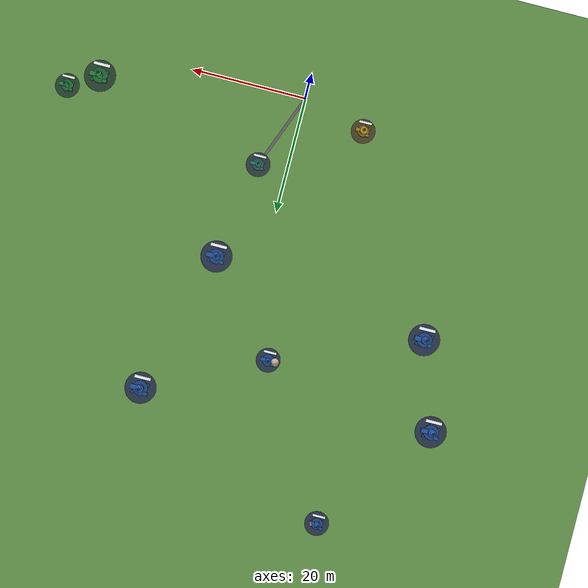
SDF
<sdf version="1.6">
 <world name="ethiopia_cities">
  <model name="ground_plane">
   <static>true</static>
   <link name="link">
    <collision name="collision">
     <geometry><plane><normal>0 0 1</normal><size>200 200</size></plane></geometry>
     <surface><friction><ode><mu>100</mu><mu2>50</mu2></ode></friction></surface>
    </collision>
    <visual name="visual">
     <geometry><plane><normal>0 0 1</normal><size>200 200</size></plane></geometry>
     <material><ambient>0.4 0.6 0.3 1</ambient><diffuse>0.4 0.6 0.3 1</diffuse></material>
    </visual>
   </link>
  </model>
  <model name="ambo">
   <static>true</static>
   <pose>-11 3 0.4 0 0 0</pose>
   <link name="link">
    <visual name="plaza_disc">
     <pose>0 0 0.02 0 0 0</pose>
     <geometry><cylinder><radius>2.1</radius><length>0.04</length></cylinder></geometry>
     <material>
      <ambient>0.22 0.19 0.12 1</ambient>
      <diffuse>0.29 0.26 0.16 1</diffuse>
      <specular>0.1 0.1 0.1 1</specular>
     </material>
    </visual>
    <visual name="marker_base">
     <geometry><cylinder><radius>1</radius><length>0.8</length></cylinder></geometry>
     <material>
      <ambient>0.34 0.28 0.08 1</ambient>
      <diffuse>0.51 0.42 0.12 1</diffuse>
      <specular>0.2 0.2 0.2 1</specular>
     </material>
    </visual>
    <visual name="marker_tower">
     <pose>0 0 0.92 0 0 0</pose>
     <geometry><cylinder><radius>0.65</radius><length>1.04</length></cylinder></geometry>
     <material>
      <ambient>0.51 0.42 0.12 1</ambient>
      <diffuse>0.72 0.59 0.17 1</diffuse>
      <specular>0.28 0.28 0.28 1</specular>
     </material>
    </visual>
    <visual name="marker_spire">
     <pose>0 0 1.72 0 0 0</pose>
     <geometry><sphere><radius>0.28</radius></sphere></geometry>
     <material>
      <ambient>0.64 0.52 0.15 1</ambient>
      <diffuse>0.85 0.7 0.2 1</diffuse>
      <specular>0.35 0.35 0.35 1</specular>
     </material>
    </visual>
    <visual name="extra_building_a">
     <pose>0.9 0 0.36 0 0 0</pose>
     <geometry><box><size>0.9 0.6 0.72</size></box></geometry>
     <material>
      <ambient>0.38 0.32 0.09 1</ambient>
      <diffuse>0.64 0.52 0.15 1</diffuse>
      <specular>0.2 0.2 0.2 1</specular>
     </material>
    </visual>
    <visual name="extra_building_b">
     <pose>-0.8 0.6 0.28 0 0 0</pose>
     <geometry><box><size>0.6 0.45 0.56</size></box></geometry>
     <material>
      <ambient>0.38 0.32 0.09 1</ambient>
      <diffuse>0.59 0.49 0.14 1</diffuse>
      <specular>0.2 0.2 0.2 1</specular>
     </material>
    </visual>
    <visual name="sub_marker_1">
     <pose>0.2 -1 0.18 0 0 0</pose>
     <geometry><box><size>0.35 0.35 0.36</size></box></geometry>
     <material>
      <ambient>0.34 0.28 0.08 1</ambient>
      <diffuse>0.55 0.45 0.13 1</diffuse>
      <specular>0.15 0.15 0.15 1</specular>
     </material>
    </visual>
    <visual name="sub_marker_2">
     <pose>-0.9 -0.6 0.18 0 0 0</pose>
     <geometry><box><size>0.35 0.35 0.36</size></box></geometry>
     <material>
      <ambient>0.34 0.28 0.08 1</ambient>
      <diffuse>0.55 0.45 0.13 1</diffuse>
      <specular>0.15 0.15 0.15 1</specular>
     </material>
    </visual>
    <visual name="label_sign">
     <pose>0 -1.4 0.75 0 0 0</pose>
     <geometry><box><size>2.2 0.4 0.08</size></box></geometry>
     <material>
      <ambient>1 1 1 1</ambient>
      <diffuse>1 1 1 1</diffuse>
      <specular>0.1 0.1 0.1 1</specular>
      <pbr>
       <metal>
        <albedo_map>assets/labels/ambo.ppm</albedo_map>
        <roughness>0.9</roughness>
        <metalness>0</metalness>
       </metal>
      </pbr>
     </material>
    </visual>
    <visual name="glow_beacon">
     <pose>0 0 2.06 0 0 0</pose>
     <geometry><sphere><radius>0.18</radius></sphere></geometry>
     <material>
      <ambient>0.26 0.21 0.06 1</ambient>
      <diffuse>0.34 0.28 0.08 1</diffuse>
      <specular>0.1 0.1 0.1 1</specular>
      <emissive>1 0.85 0.35 1</emissive>
     </material>
    </visual>
    <collision name="collision">
     <geometry><cylinder><radius>1</radius><length>0.8</length></cylinder></geometry>
    </collision>
   </link>
  </model>
  <model name="dire_dawa">
   <static>true</static>
   <pose>35 5 0.4 0 0 0</pose>
   <link name="link">
    <visual name="plaza_disc">
     <pose>0 0 0.02 0 0 0</pose>
     <geometry><cylinder><radius>2.73</radius><length>0.04</length></cylinder></geometry>
     <material>
      <ambient>0.12 0.19 0.14 1</ambient>
      <diffuse>0.16 0.26 0.19 1</diffuse>
      <specular>0.1 0.1 0.1 1</specular>
     </material>
    </visual>
    <visual name="marker_base">
     <geometry><cylinder><radius>1.3</radius><length>0.95</length></cylinder></geometry>
     <material>
      <ambient>0.08 0.28 0.14 1</ambient>
      <diffuse>0.12 0.42 0.21 1</diffuse>
      <specular>0.2 0.2 0.2 1</specular>
     </material>
    </visual>
    <visual name="marker_tower">
     <pose>0 0 1.42 0 0 0</pose>
     <geometry><cylinder><radius>0.52</radius><length>1.9</length></cylinder></geometry>
     <material>
      <ambient>0.12 0.42 0.21 1</ambient>
      <diffuse>0.17 0.59 0.3 1</diffuse>
      <specular>0.28 0.28 0.28 1</specular>
     </material>
    </visual>
    <visual name="marker_spire">
     <pose>0 0 2.69 0 0 0</pose>
     <geometry><sphere><radius>0.31</radius></sphere></geometry>
     <material>
      <ambient>0.15 0.52 0.26 1</ambient>
      <diffuse>0.2 0.7 0.35 1</diffuse>
      <specular>0.35 0.35 0.35 1</specular>
     </material>
    </visual>
    <visual name="extra_building_a">
     <pose>1.17 0 0.43 0 0 0</pose>
     <geometry><box><size>1.17 0.78 0.85</size></box></geometry>
     <material>
      <ambient>0.09 0.32 0.16 1</ambient>
      <diffuse>0.15 0.52 0.26 1</diffuse>
      <specular>0.2 0.2 0.2 1</specular>
     </material>
    </visual>
    <visual name="extra_building_b">
     <pose>-1.04 0.78 0.33 0 0 0</pose>
     <geometry><box><size>0.78 0.59 0.66</size></box></geometry>
     <material>
      <ambient>0.09 0.32 0.16 1</ambient>
      <diffuse>0.14 0.49 0.24 1</diffuse>
      <specular>0.2 0.2 0.2 1</specular>
     </material>
    </visual>
    <visual name="sub_marker_1">
     <pose>0.26 -1.3 0.21 0 0 0</pose>
     <geometry><box><size>0.45 0.45 0.43</size></box></geometry>
     <material>
      <ambient>0.08 0.28 0.14 1</ambient>
      <diffuse>0.13 0.45 0.23 1</diffuse>
      <specular>0.15 0.15 0.15 1</specular>
     </material>
    </visual>
    <visual name="sub_marker_2">
     <pose>-1.17 -0.78 0.21 0 0 0</pose>
     <geometry><box><size>0.45 0.45 0.43</size></box></geometry>
     <material>
      <ambient>0.08 0.28 0.14 1</ambient>
      <diffuse>0.13 0.45 0.23 1</diffuse>
      <specular>0.15 0.15 0.15 1</specular>
     </material>
    </visual>
    <visual name="sub_marker_3">
     <pose>1.17 0.91 0.21 0 0 0</pose>
     <geometry><box><size>0.45 0.45 0.43</size></box></geometry>
     <material>
      <ambient>0.08 0.28 0.14 1</ambient>
      <diffuse>0.13 0.45 0.23 1</diffuse>
      <specular>0.15 0.15 0.15 1</specular>
     </material>
    </visual>
    <visual name="label_sign">
     <pose>0 -1.82 0.82 0 0 0</pose>
     <geometry><box><size>2.86 0.52 0.08</size></box></geometry>
     <material>
      <ambient>1 1 1 1</ambient>
      <diffuse>1 1 1 1</diffuse>
      <specular>0.1 0.1 0.1 1</specular>
      <pbr>
       <metal>
        <albedo_map>assets/labels/dire_dawa.ppm</albedo_map>
        <roughness>0.9</roughness>
        <metalness>0</metalness>
       </metal>
      </pbr>
     </material>
    </visual>
    <visual name="glow_beacon">
     <pose>0 0 3.06 0 0 0</pose>
     <geometry><sphere><radius>0.23</radius></sphere></geometry>
     <material>
      <ambient>0.06 0.21 0.1 1</ambient>
      <diffuse>0.08 0.28 0.14 1</diffuse>
      <specular>0.1 0.1 0.1 1</specular>
      <emissive>0.35 0.85 0.5 1</emissive>
     </material>
    </visual>
    <collision name="collision">
     <geometry><cylinder><radius>1.3</radius><length>0.95</length></cylinder></geometry>
    </collision>
   </link>
  </model>
  <model name="harar">
   <static>true</static>
   <pose>40 8 0.4 0 0 0</pose>
   <link name="link">
    <visual name="plaza_disc">
     <pose>0 0 0.02 0 0 0</pose>
     <geometry><cylinder><radius>2.1</radius><length>0.04</length></cylinder></geometry>
     <material>
      <ambient>0.12 0.19 0.14 1</ambient>
      <diffuse>0.16 0.26 0.19 1</diffuse>
      <specular>0.1 0.1 0.1 1</specular>
     </material>
    </visual>
    <visual name="marker_base">
     <geometry><cylinder><radius>1</radius><length>0.8</length></cylinder></geometry>
     <material>
      <ambient>0.08 0.28 0.14 1</ambient>
      <diffuse>0.12 0.42 0.21 1</diffuse>
      <specular>0.2 0.2 0.2 1</specular>
     </material>
    </visual>
    <visual name="marker_tower">
     <pose>0 0 1.2 0 0 0</pose>
     <geometry><cylinder><radius>0.4</radius><length>1.6</length></cylinder></geometry>
     <material>
      <ambient>0.12 0.42 0.21 1</ambient>
      <diffuse>0.17 0.59 0.3 1</diffuse>
      <specular>0.28 0.28 0.28 1</specular>
     </material>
    </visual>
    <visual name="marker_spire">
     <pose>0 0 2.24 0 0 0</pose>
     <geometry><sphere><radius>0.24</radius></sphere></geometry>
     <material>
      <ambient>0.15 0.52 0.26 1</ambient>
      <diffuse>0.2 0.7 0.35 1</diffuse>
      <specular>0.35 0.35 0.35 1</specular>
     </material>
    </visual>
    <visual name="extra_building_a">
     <pose>0.9 0 0.36 0 0 0</pose>
     <geometry><box><size>0.9 0.6 0.72</size></box></geometry>
     <material>
      <ambient>0.09 0.32 0.16 1</ambient>
      <diffuse>0.15 0.52 0.26 1</diffuse>
      <specular>0.2 0.2 0.2 1</specular>
     </material>
    </visual>
    <visual name="extra_building_b">
     <pose>-0.8 0.6 0.28 0 0 0</pose>
     <geometry><box><size>0.6 0.45 0.56</size></box></geometry>
     <material>
      <ambient>0.09 0.32 0.16 1</ambient>
      <diffuse>0.14 0.49 0.24 1</diffuse>
      <specular>0.2 0.2 0.2 1</specular>
     </material>
    </visual>
    <visual name="sub_marker_1">
     <pose>0.2 -1 0.18 0 0 0</pose>
     <geometry><box><size>0.35 0.35 0.36</size></box></geometry>
     <material>
      <ambient>0.08 0.28 0.14 1</ambient>
      <diffuse>0.13 0.45 0.23 1</diffuse>
      <specular>0.15 0.15 0.15 1</specular>
     </material>
    </visual>
    <visual name="sub_marker_2">
     <pose>-0.9 -0.6 0.18 0 0 0</pose>
     <geometry><box><size>0.35 0.35 0.36</size></box></geometry>
     <material>
      <ambient>0.08 0.28 0.14 1</ambient>
      <diffuse>0.13 0.45 0.23 1</diffuse>
      <specular>0.15 0.15 0.15 1</specular>
     </material>
    </visual>
    <visual name="label_sign">
     <pose>0 -1.4 0.75 0 0 0</pose>
     <geometry><box><size>2.2 0.4 0.08</size></box></geometry>
     <material>
      <ambient>1 1 1 1</ambient>
      <diffuse>1 1 1 1</diffuse>
      <specular>0.1 0.1 0.1 1</specular>
      <pbr>
       <metal>
        <albedo_map>assets/labels/harar.ppm</albedo_map>
        <roughness>0.9</roughness>
        <metalness>0</metalness>
       </metal>
      </pbr>
     </material>
    </visual>
    <visual name="glow_beacon">
     <pose>0 0 2.53 0 0 0</pose>
     <geometry><sphere><radius>0.18</radius></sphere></geometry>
     <material>
      <ambient>0.06 0.21 0.1 1</ambient>
      <diffuse>0.08 0.28 0.14 1</diffuse>
      <specular>0.1 0.1 0.1 1</specular>
      <emissive>0.35 0.85 0.5 1</emissive>
     </material>
    </visual>
    <collision name="collision">
     <geometry><cylinder><radius>1</radius><length>0.8</length></cylinder></geometry>
    </collision>
   </link>
  </model>
  <model name="debre_berhan">
   <static>true</static>
   <pose>5 13 0.4 0 0 0</pose>
   <link name="link">
    <visual name="plaza_disc">
     <pose>0 0 0.02 0 0 0</pose>
     <geometry><cylinder><radius>2.1</radius><length>0.04</length></cylinder></geometry>
     <material>
      <ambient>0.13 0.18 0.18 1</ambient>
      <diffuse>0.17 0.24 0.24 1</diffuse>
      <specular>0.1 0.1 0.1 1</specular>
     </material>
    </visual>
    <visual name="marker_base">
     <geometry><cylinder><radius>1</radius><length>0.8</length></cylinder></geometry>
     <material>
      <ambient>0.1 0.24 0.24 1</ambient>
      <diffuse>0.15 0.36 0.36 1</diffuse>
      <specular>0.2 0.2 0.2 1</specular>
     </material>
    </visual>
    <visual name="marker_tower">
     <pose>0 0 0.96 0 0 0</pose>
     <geometry><cylinder><radius>0.5</radius><length>1.12</length></cylinder></geometry>
     <material>
      <ambient>0.15 0.36 0.36 1</ambient>
      <diffuse>0.21 0.51 0.51 1</diffuse>
      <specular>0.28 0.28 0.28 1</specular>
     </material>
    </visual>
    <visual name="marker_spire">
     <pose>0 0 1.8 0 0 0</pose>
     <geometry><sphere><radius>0.28</radius></sphere></geometry>
     <material>
      <ambient>0.19 0.45 0.45 1</ambient>
      <diffuse>0.25 0.6 0.6 1</diffuse>
      <specular>0.35 0.35 0.35 1</specular>
     </material>
    </visual>
    <visual name="extra_building_a">
     <pose>0.9 0 0.36 0 0 0</pose>
     <geometry><box><size>0.9 0.6 0.72</size></box></geometry>
     <material>
      <ambient>0.11 0.27 0.27 1</ambient>
      <diffuse>0.19 0.45 0.45 1</diffuse>
      <specular>0.2 0.2 0.2 1</specular>
     </material>
    </visual>
    <visual name="extra_building_b">
     <pose>-0.8 0.6 0.28 0 0 0</pose>
     <geometry><box><size>0.6 0.45 0.56</size></box></geometry>
     <material>
      <ambient>0.11 0.27 0.27 1</ambient>
      <diffuse>0.17 0.42 0.42 1</diffuse>
      <specular>0.2 0.2 0.2 1</specular>
     </material>
    </visual>
    <visual name="sub_marker_1">
     <pose>0.2 -1 0.18 0 0 0</pose>
     <geometry><box><size>0.35 0.35 0.36</size></box></geometry>
     <material>
      <ambient>0.1 0.24 0.24 1</ambient>
      <diffuse>0.16 0.39 0.39 1</diffuse>
      <specular>0.15 0.15 0.15 1</specular>
     </material>
    </visual>
    <visual name="sub_marker_2">
     <pose>-0.9 -0.6 0.18 0 0 0</pose>
     <geometry><box><size>0.35 0.35 0.36</size></box></geometry>
     <material>
      <ambient>0.1 0.24 0.24 1</ambient>
      <diffuse>0.16 0.39 0.39 1</diffuse>
      <specular>0.15 0.15 0.15 1</specular>
     </material>
    </visual>
    <visual name="label_sign">
     <pose>0 -1.4 0.75 0 0 0</pose>
     <geometry><box><size>2.2 0.4 0.08</size></box></geometry>
     <material>
      <ambient>1 1 1 1</ambient>
      <diffuse>1 1 1 1</diffuse>
      <specular>0.1 0.1 0.1 1</specular>
      <pbr>
       <metal>
        <albedo_map>assets/labels/debre_berhan.ppm</albedo_map>
        <roughness>0.9</roughness>
        <metalness>0</metalness>
       </metal>
      </pbr>
     </material>
    </visual>
    <visual name="glow_beacon">
     <pose>0 0 2.14 0 0 0</pose>
     <geometry><sphere><radius>0.18</radius></sphere></geometry>
     <material>
      <ambient>0.07 0.18 0.18 1</ambient>
      <diffuse>0.1 0.24 0.24 1</diffuse>
      <specular>0.1 0.1 0.1 1</specular>
      <emissive>0.4 0.75 0.75 1</emissive>
     </material>
    </visual>
    <collision name="collision">
     <geometry><cylinder><radius>1</radius><length>0.8</length></cylinder></geometry>
    </collision>
   </link>
  </model>
  <model name="dessie">
   <static>true</static>
   <pose>8 30 0.4 0 0 0</pose>
   <link name="link">
    <visual name="plaza_disc">
     <pose>0 0 0.02 0 0 0</pose>
     <geometry><cylinder><radius>2.73</radius><length>0.04</length></cylinder></geometry>
     <material>
      <ambient>0.12 0.16 0.22 1</ambient>
      <diffuse>0.16 0.21 0.29 1</diffuse>
      <specular>0.1 0.1 0.1 1</specular>
     </material>
    </visual>
    <visual name="marker_base">
     <geometry><cylinder><radius>1.3</radius><length>0.95</length></cylinder></geometry>
     <material>
      <ambient>0.08 0.18 0.34 1</ambient>
      <diffuse>0.12 0.27 0.51 1</diffuse>
      <specular>0.2 0.2 0.2 1</specular>
     </material>
    </visual>
    <visual name="marker_tower">
     <pose>0 0 1.19 0 0 0</pose>
     <geometry><cylinder><radius>0.65</radius><length>1.42</length></cylinder></geometry>
     <material>
      <ambient>0.12 0.27 0.51 1</ambient>
      <diffuse>0.17 0.38 0.72 1</diffuse>
      <specular>0.28 0.28 0.28 1</specular>
     </material>
    </visual>
    <visual name="marker_spire">
     <pose>0 0 2.32 0 0 0</pose>
     <geometry><sphere><radius>0.42</radius></sphere></geometry>
     <material>
      <ambient>0.15 0.34 0.64 1</ambient>
      <diffuse>0.2 0.45 0.85 1</diffuse>
      <specular>0.35 0.35 0.35 1</specular>
     </material>
    </visual>
    <visual name="extra_building_a">
     <pose>1.17 0 0.43 0 0 0</pose>
     <geometry><box><size>1.17 0.78 0.85</size></box></geometry>
     <material>
      <ambient>0.09 0.2 0.38 1</ambient>
      <diffuse>0.15 0.34 0.64 1</diffuse>
      <specular>0.2 0.2 0.2 1</specular>
     </material>
    </visual>
    <visual name="extra_building_b">
     <pose>-1.04 0.78 0.33 0 0 0</pose>
     <geometry><box><size>0.78 0.59 0.66</size></box></geometry>
     <material>
      <ambient>0.09 0.2 0.38 1</ambient>
      <diffuse>0.14 0.32 0.59 1</diffuse>
      <specular>0.2 0.2 0.2 1</specular>
     </material>
    </visual>
    <visual name="sub_marker_1">
     <pose>0.26 -1.3 0.21 0 0 0</pose>
     <geometry><box><size>0.45 0.45 0.43</size></box></geometry>
     <material>
      <ambient>0.08 0.18 0.34 1</ambient>
      <diffuse>0.13 0.29 0.55 1</diffuse>
      <specular>0.15 0.15 0.15 1</specular>
     </material>
    </visual>
    <visual name="sub_marker_2">
     <pose>-1.17 -0.78 0.21 0 0 0</pose>
     <geometry><box><size>0.45 0.45 0.43</size></box></geometry>
     <material>
      <ambient>0.08 0.18 0.34 1</ambient>
      <diffuse>0.13 0.29 0.55 1</diffuse>
      <specular>0.15 0.15 0.15 1</specular>
     </material>
    </visual>
    <visual name="sub_marker_3">
     <pose>1.17 0.91 0.21 0 0 0</pose>
     <geometry><box><size>0.45 0.45 0.43</size></box></geometry>
     <material>
      <ambient>0.08 0.18 0.34 1</ambient>
      <diffuse>0.13 0.29 0.55 1</diffuse>
      <specular>0.15 0.15 0.15 1</specular>
     </material>
    </visual>
    <visual name="label_sign">
     <pose>0 -1.82 0.82 0 0 0</pose>
     <geometry><box><size>2.86 0.52 0.08</size></box></geometry>
     <material>
      <ambient>1 1 1 1</ambient>
      <diffuse>1 1 1 1</diffuse>
      <specular>0.1 0.1 0.1 1</specular>
      <pbr>
       <metal>
        <albedo_map>assets/labels/dessie.ppm</albedo_map>
        <roughness>0.9</roughness>
        <metalness>0</metalness>
       </metal>
      </pbr>
     </material>
    </visual>
    <visual name="glow_beacon">
     <pose>0 0 2.82 0 0 0</pose>
     <geometry><sphere><radius>0.23</radius></sphere></geometry>
     <material>
      <ambient>0.06 0.14 0.26 1</ambient>
      <diffuse>0.08 0.18 0.34 1</diffuse>
      <specular>0.1 0.1 0.1 1</specular>
      <emissive>0.35 0.6 1 1</emissive>
     </material>
    </visual>
    <collision name="collision">
     <geometry><cylinder><radius>1.3</radius><length>0.95</length></cylinder></geometry>
    </collision>
   </link>
  </model>
  <model name="lalibela">
   <static>true</static>
   <pose>-5 45 0.4 0 0 0</pose>
   <link name="link">
    <visual name="plaza_disc">
     <pose>0 0 0.02 0 0 0</pose>
     <geometry><cylinder><radius>2.1</radius><length>0.04</length></cylinder></geometry>
     <material>
      <ambient>0.12 0.16 0.22 1</ambient>
      <diffuse>0.16 0.21 0.29 1</diffuse>
      <specular>0.1 0.1 0.1 1</specular>
     </material>
    </visual>
    <visual name="marker_base">
     <geometry><cylinder><radius>1</radius><length>0.8</length></cylinder></geometry>
     <material>
      <ambient>0.08 0.18 0.34 1</ambient>
      <diffuse>0.12 0.27 0.51 1</diffuse>
      <specular>0.2 0.2 0.2 1</specular>
     </material>
    </visual>
    <visual name="marker_tower">
     <pose>0 0 1 0 0 0</pose>
     <geometry><cylinder><radius>0.5</radius><length>1.2</length></cylinder></geometry>
     <material>
      <ambient>0.12 0.27 0.51 1</ambient>
      <diffuse>0.17 0.38 0.72 1</diffuse>
      <specular>0.28 0.28 0.28 1</specular>
     </material>
    </visual>
    <visual name="marker_spire">
     <pose>0 0 1.92 0 0 0</pose>
     <geometry><sphere><radius>0.32</radius></sphere></geometry>
     <material>
      <ambient>0.15 0.34 0.64 1</ambient>
      <diffuse>0.2 0.45 0.85 1</diffuse>
      <specular>0.35 0.35 0.35 1</specular>
     </material>
    </visual>
    <visual name="extra_building_a">
     <pose>0.9 0 0.36 0 0 0</pose>
     <geometry><box><size>0.9 0.6 0.72</size></box></geometry>
     <material>
      <ambient>0.09 0.2 0.38 1</ambient>
      <diffuse>0.15 0.34 0.64 1</diffuse>
      <specular>0.2 0.2 0.2 1</specular>
     </material>
    </visual>
    <visual name="extra_building_b">
     <pose>-0.8 0.6 0.28 0 0 0</pose>
     <geometry><box><size>0.6 0.45 0.56</size></box></geometry>
     <material>
      <ambient>0.09 0.2 0.38 1</ambient>
      <diffuse>0.14 0.32 0.59 1</diffuse>
      <specular>0.2 0.2 0.2 1</specular>
     </material>
    </visual>
    <visual name="sub_marker_1">
     <pose>0.2 -1 0.18 0 0 0</pose>
     <geometry><box><size>0.35 0.35 0.36</size></box></geometry>
     <material>
      <ambient>0.08 0.18 0.34 1</ambient>
      <diffuse>0.13 0.29 0.55 1</diffuse>
      <specular>0.15 0.15 0.15 1</specular>
     </material>
    </visual>
    <visual name="sub_marker_2">
     <pose>-0.9 -0.6 0.18 0 0 0</pose>
     <geometry><box><size>0.35 0.35 0.36</size></box></geometry>
     <material>
      <ambient>0.08 0.18 0.34 1</ambient>
      <diffuse>0.13 0.29 0.55 1</diffuse>
      <specular>0.15 0.15 0.15 1</specular>
     </material>
    </visual>
    <visual name="label_sign">
     <pose>0 -1.4 0.75 0 0 0</pose>
     <geometry><box><size>2.2 0.4 0.08</size></box></geometry>
     <material>
      <ambient>1 1 1 1</ambient>
      <diffuse>1 1 1 1</diffuse>
      <specular>0.1 0.1 0.1 1</specular>
      <pbr>
       <metal>
        <albedo_map>assets/labels/lalibela.ppm</albedo_map>
        <roughness>0.9</roughness>
        <metalness>0</metalness>
       </metal>
      </pbr>
     </material>
    </visual>
    <visual name="glow_beacon">
     <pose>0 0 2.3 0 0 0</pose>
     <geometry><sphere><radius>0.18</radius></sphere></geometry>
     <material>
      <ambient>0.06 0.14 0.26 1</ambient>
      <diffuse>0.08 0.18 0.34 1</diffuse>
      <specular>0.1 0.1 0.1 1</specular>
      <emissive>0.35 0.6 1 1</emissive>
     </material>
    </visual>
    <visual name="landmark_lalibela_base">
     <pose>-1.2 0 0.24 0 0 0</pose>
     <geometry><cylinder><radius>0.6</radius><length>0.48</length></cylinder></geometry>
     <material>
      <ambient>0.35 0.33 0.3 1</ambient>
      <diffuse>0.7 0.65 0.6 1</diffuse>
      <specular>0.25 0.25 0.2 1</specular>
     </material>
    </visual>
    <visual name="landmark_lalibela_dome">
     <pose>-1.2 0 1.18 0 0 0</pose>
     <geometry><sphere><radius>0.7</radius></sphere></geometry>
     <material>
      <ambient>0.38 0.35 0.3 1</ambient>
      <diffuse>0.75 0.7 0.6 1</diffuse>
      <specular>0.25 0.25 0.2 1</specular>
     </material>
    </visual>
    <collision name="collision">
     <geometry><cylinder><radius>1</radius><length>0.8</length></cylinder></geometry>
    </collision>
   </link>
  </model>
  <model name="bahir_dar">
   <static>true</static>
   <pose>-30 35 0.4 0 0 0</pose>
   <link name="link">
    <visual name="plaza_disc">
     <pose>0 0 0.02 0 0 0</pose>
     <geometry><cylinder><radius>2.73</radius><length>0.04</length></cylinder></geometry>
     <material>
      <ambient>0.12 0.16 0.22 1</ambient>
      <diffuse>0.16 0.21 0.29 1</diffuse>
      <specular>0.1 0.1 0.1 1</specular>
     </material>
    </visual>
    <visual name="marker_base">
     <geometry><cylinder><radius>1.3</radius><length>0.95</length></cylinder></geometry>
     <material>
      <ambient>0.08 0.18 0.34 1</ambient>
      <diffuse>0.12 0.27 0.51 1</diffuse>
      <specular>0.2 0.2 0.2 1</specular>
     </material>
    </visual>
    <visual name="marker_tower">
     <pose>0 0 1.19 0 0 0</pose>
     <geometry><cylinder><radius>0.65</radius><length>1.42</length></cylinder></geometry>
     <material>
      <ambient>0.12 0.27 0.51 1</ambient>
      <diffuse>0.17 0.38 0.72 1</diffuse>
      <specular>0.28 0.28 0.28 1</specular>
     </material>
    </visual>
    <visual name="marker_spire">
     <pose>0 0 2.32 0 0 0</pose>
     <geometry><sphere><radius>0.42</radius></sphere></geometry>
     <material>
      <ambient>0.15 0.34 0.64 1</ambient>
      <diffuse>0.2 0.45 0.85 1</diffuse>
      <specular>0.35 0.35 0.35 1</specular>
     </material>
    </visual>
    <visual name="extra_building_a">
     <pose>1.17 0 0.43 0 0 0</pose>
     <geometry><box><size>1.17 0.78 0.85</size></box></geometry>
     <material>
      <ambient>0.09 0.2 0.38 1</ambient>
      <diffuse>0.15 0.34 0.64 1</diffuse>
      <specular>0.2 0.2 0.2 1</specular>
     </material>
    </visual>
    <visual name="extra_building_b">
     <pose>-1.04 0.78 0.33 0 0 0</pose>
     <geometry><box><size>0.78 0.59 0.66</size></box></geometry>
     <material>
      <ambient>0.09 0.2 0.38 1</ambient>
      <diffuse>0.14 0.32 0.59 1</diffuse>
      <specular>0.2 0.2 0.2 1</specular>
     </material>
    </visual>
    <visual name="sub_marker_1">
     <pose>0.26 -1.3 0.21 0 0 0</pose>
     <geometry><box><size>0.45 0.45 0.43</size></box></geometry>
     <material>
      <ambient>0.08 0.18 0.34 1</ambient>
      <diffuse>0.13 0.29 0.55 1</diffuse>
      <specular>0.15 0.15 0.15 1</specular>
     </material>
    </visual>
    <visual name="sub_marker_2">
     <pose>-1.17 -0.78 0.21 0 0 0</pose>
     <geometry><box><size>0.45 0.45 0.43</size></box></geometry>
     <material>
      <ambient>0.08 0.18 0.34 1</ambient>
      <diffuse>0.13 0.29 0.55 1</diffuse>
      <specular>0.15 0.15 0.15 1</specular>
     </material>
    </visual>
    <visual name="sub_marker_3">
     <pose>1.17 0.91 0.21 0 0 0</pose>
     <geometry><box><size>0.45 0.45 0.43</size></box></geometry>
     <material>
      <ambient>0.08 0.18 0.34 1</ambient>
      <diffuse>0.13 0.29 0.55 1</diffuse>
      <specular>0.15 0.15 0.15 1</specular>
     </material>
    </visual>
    <visual name="label_sign">
     <pose>0 -1.82 0.82 0 0 0</pose>
     <geometry><box><size>2.86 0.52 0.08</size></box></geometry>
     <material>
      <ambient>1 1 1 1</ambient>
      <diffuse>1 1 1 1</diffuse>
      <specular>0.1 0.1 0.1 1</specular>
      <pbr>
       <metal>
        <albedo_map>assets/labels/bahir_dar.ppm</albedo_map>
        <roughness>0.9</roughness>
        <metalness>0</metalness>
       </metal>
      </pbr>
     </material>
    </visual>
    <visual name="glow_beacon">
     <pose>0 0 2.82 0 0 0</pose>
     <geometry><sphere><radius>0.23</radius></sphere></geometry>
     <material>
      <ambient>0.06 0.14 0.26 1</ambient>
      <diffuse>0.08 0.18 0.34 1</diffuse>
      <specular>0.1 0.1 0.1 1</specular>
      <emissive>0.35 0.6 1 1</emissive>
     </material>
    </visual>
    <collision name="collision">
     <geometry><cylinder><radius>1.3</radius><length>0.95</length></cylinder></geometry>
    </collision>
   </link>
  </model>
  <model name="gondar">
   <static>true</static>
   <pose>-35 50 0.4 0 0 0</pose>
   <link name="link">
    <visual name="plaza_disc">
     <pose>0 0 0.02 0 0 0</pose>
     <geometry><cylinder><radius>2.73</radius><length>0.04</length></cylinder></geometry>
     <material>
      <ambient>0.12 0.16 0.22 1</ambient>
      <diffuse>0.16 0.21 0.29 1</diffuse>
      <specular>0.1 0.1 0.1 1</specular>
     </material>
    </visual>
    <visual name="marker_base">
     <geometry><cylinder><radius>1.3</radius><length>0.95</length></cylinder></geometry>
     <material>
      <ambient>0.08 0.18 0.34 1</ambient>
      <diffuse>0.12 0.27 0.51 1</diffuse>
      <specular>0.2 0.2 0.2 1</specular>
     </material>
    </visual>
    <visual name="marker_tower">
     <pose>0 0 1.19 0 0 0</pose>
     <geometry><cylinder><radius>0.65</radius><length>1.42</length></cylinder></geometry>
     <material>
      <ambient>0.12 0.27 0.51 1</ambient>
      <diffuse>0.17 0.38 0.72 1</diffuse>
      <specular>0.28 0.28 0.28 1</specular>
     </material>
    </visual>
    <visual name="marker_spire">
     <pose>0 0 2.32 0 0 0</pose>
     <geometry><sphere><radius>0.42</radius></sphere></geometry>
     <material>
      <ambient>0.15 0.34 0.64 1</ambient>
      <diffuse>0.2 0.45 0.85 1</diffuse>
      <specular>0.35 0.35 0.35 1</specular>
     </material>
    </visual>
    <visual name="extra_building_a">
     <pose>1.17 0 0.43 0 0 0</pose>
     <geometry><box><size>1.17 0.78 0.85</size></box></geometry>
     <material>
      <ambient>0.09 0.2 0.38 1</ambient>
      <diffuse>0.15 0.34 0.64 1</diffuse>
      <specular>0.2 0.2 0.2 1</specular>
     </material>
    </visual>
    <visual name="extra_building_b">
     <pose>-1.04 0.78 0.33 0 0 0</pose>
     <geometry><box><size>0.78 0.59 0.66</size></box></geometry>
     <material>
      <ambient>0.09 0.2 0.38 1</ambient>
      <diffuse>0.14 0.32 0.59 1</diffuse>
      <specular>0.2 0.2 0.2 1</specular>
     </material>
    </visual>
    <visual name="sub_marker_1">
     <pose>0.26 -1.3 0.21 0 0 0</pose>
     <geometry><box><size>0.45 0.45 0.43</size></box></geometry>
     <material>
      <ambient>0.08 0.18 0.34 1</ambient>
      <diffuse>0.13 0.29 0.55 1</diffuse>
      <specular>0.15 0.15 0.15 1</specular>
     </material>
    </visual>
    <visual name="sub_marker_2">
     <pose>-1.17 -0.78 0.21 0 0 0</pose>
     <geometry><box><size>0.45 0.45 0.43</size></box></geometry>
     <material>
      <ambient>0.08 0.18 0.34 1</ambient>
      <diffuse>0.13 0.29 0.55 1</diffuse>
      <specular>0.15 0.15 0.15 1</specular>
     </material>
    </visual>
    <visual name="sub_marker_3">
     <pose>1.17 0.91 0.21 0 0 0</pose>
     <geometry><box><size>0.45 0.45 0.43</size></box></geometry>
     <material>
      <ambient>0.08 0.18 0.34 1</ambient>
      <diffuse>0.13 0.29 0.55 1</diffuse>
      <specular>0.15 0.15 0.15 1</specular>
     </material>
    </visual>
    <visual name="label_sign">
     <pose>0 -1.82 0.82 0 0 0</pose>
     <geometry><box><size>2.86 0.52 0.08</size></box></geometry>
     <material>
      <ambient>1 1 1 1</ambient>
      <diffuse>1 1 1 1</diffuse>
      <specular>0.1 0.1 0.1 1</specular>
      <pbr>
       <metal>
        <albedo_map>assets/labels/gondar.ppm</albedo_map>
        <roughness>0.9</roughness>
        <metalness>0</metalness>
       </metal>
      </pbr>
     </material>
    </visual>
    <visual name="glow_beacon">
     <pose>0 0 2.82 0 0 0</pose>
     <geometry><sphere><radius>0.23</radius></sphere></geometry>
     <material>
      <ambient>0.06 0.14 0.26 1</ambient>
      <diffuse>0.08 0.18 0.34 1</diffuse>
      <specular>0.1 0.1 0.1 1</specular>
      <emissive>0.35 0.6 1 1</emissive>
     </material>
    </visual>
    <collision name="collision">
     <geometry><cylinder><radius>1.3</radius><length>0.95</length></cylinder></geometry>
    </collision>
   </link>
  </model>
  <model name="axum">
   <static>true</static>
   <pose>-20 70 0.4 0 0 0</pose>
   <link name="link">
    <visual name="plaza_disc">
     <pose>0 0 0.02 0 0 0</pose>
     <geometry><cylinder><radius>2.1</radius><length>0.04</length></cylinder></geometry>
     <material>
      <ambient>0.12 0.16 0.22 1</ambient>
      <diffuse>0.16 0.21 0.29 1</diffuse>
      <specular>0.1 0.1 0.1 1</specular>
     </material>
    </visual>
    <visual name="marker_base">
     <geometry><cylinder><radius>1</radius><length>0.8</length></cylinder></geometry>
     <material>
      <ambient>0.08 0.18 0.34 1</ambient>
      <diffuse>0.12 0.27 0.51 1</diffuse>
      <specular>0.2 0.2 0.2 1</specular>
     </material>
    </visual>
    <visual name="marker_tower">
     <pose>0 0 1 0 0 0</pose>
     <geometry><cylinder><radius>0.5</radius><length>1.2</length></cylinder></geometry>
     <material>
      <ambient>0.12 0.27 0.51 1</ambient>
      <diffuse>0.17 0.38 0.72 1</diffuse>
      <specular>0.28 0.28 0.28 1</specular>
     </material>
    </visual>
    <visual name="marker_spire">
     <pose>0 0 1.92 0 0 0</pose>
     <geometry><sphere><radius>0.32</radius></sphere></geometry>
     <material>
      <ambient>0.15 0.34 0.64 1</ambient>
      <diffuse>0.2 0.45 0.85 1</diffuse>
      <specular>0.35 0.35 0.35 1</specular>
     </material>
    </visual>
    <visual name="extra_building_a">
     <pose>0.9 0 0.36 0 0 0</pose>
     <geometry><box><size>0.9 0.6 0.72</size></box></geometry>
     <material>
      <ambient>0.09 0.2 0.38 1</ambient>
      <diffuse>0.15 0.34 0.64 1</diffuse>
      <specular>0.2 0.2 0.2 1</specular>
     </material>
    </visual>
    <visual name="extra_building_b">
     <pose>-0.8 0.6 0.28 0 0 0</pose>
     <geometry><box><size>0.6 0.45 0.56</size></box></geometry>
     <material>
      <ambient>0.09 0.2 0.38 1</ambient>
      <diffuse>0.14 0.32 0.59 1</diffuse>
      <specular>0.2 0.2 0.2 1</specular>
     </material>
    </visual>
    <visual name="sub_marker_1">
     <pose>0.2 -1 0.18 0 0 0</pose>
     <geometry><box><size>0.35 0.35 0.36</size></box></geometry>
     <material>
      <ambient>0.08 0.18 0.34 1</ambient>
      <diffuse>0.13 0.29 0.55 1</diffuse>
      <specular>0.15 0.15 0.15 1</specular>
     </material>
    </visual>
    <visual name="sub_marker_2">
     <pose>-0.9 -0.6 0.18 0 0 0</pose>
     <geometry><box><size>0.35 0.35 0.36</size></box></geometry>
     <material>
      <ambient>0.08 0.18 0.34 1</ambient>
      <diffuse>0.13 0.29 0.55 1</diffuse>
      <specular>0.15 0.15 0.15 1</specular>
     </material>
    </visual>
    <visual name="label_sign">
     <pose>0 -1.4 0.75 0 0 0</pose>
     <geometry><box><size>2.2 0.4 0.08</size></box></geometry>
     <material>
      <ambient>1 1 1 1</ambient>
      <diffuse>1 1 1 1</diffuse>
      <specular>0.1 0.1 0.1 1</specular>
      <pbr>
       <metal>
        <albedo_map>assets/labels/axum.ppm</albedo_map>
        <roughness>0.9</roughness>
        <metalness>0</metalness>
       </metal>
      </pbr>
     </material>
    </visual>
    <visual name="glow_beacon">
     <pose>0 0 2.3 0 0 0</pose>
     <geometry><sphere><radius>0.18</radius></sphere></geometry>
     <material>
      <ambient>0.06 0.14 0.26 1</ambient>
      <diffuse>0.08 0.18 0.34 1</diffuse>
      <specular>0.1 0.1 0.1 1</specular>
      <emissive>0.35 0.6 1 1</emissive>
     </material>
    </visual>
    <visual name="landmark_axum_obelisk">
     <pose>1.2 0 1.2 0 0 0</pose>
     <geometry><box><size>0.35 0.35 2.4</size></box></geometry>
     <material>
      <ambient>0.33 0.31 0.28 1</ambient>
      <diffuse>0.65 0.62 0.55 1</diffuse>
      <specular>0.35 0.35 0.3 1</specular>
     </material>
    </visual>
    <collision name="collision">
     <geometry><cylinder><radius>1</radius><length>0.8</length></cylinder></geometry>
    </collision>
   </link>
  </model>
  <model name="mekelle">
   <static>true</static>
   <pose>15 55 0.4 0 0 0</pose>
   <link name="link">
    <visual name="plaza_disc">
     <pose>0 0 0.02 0 0 0</pose>
     <geometry><cylinder><radius>2.73</radius><length>0.04</length></cylinder></geometry>
     <material>
      <ambient>0.12 0.16 0.22 1</ambient>
      <diffuse>0.16 0.21 0.29 1</diffuse>
      <specular>0.1 0.1 0.1 1</specular>
     </material>
    </visual>
    <visual name="marker_base">
     <geometry><cylinder><radius>1.3</radius><length>0.95</length></cylinder></geometry>
     <material>
      <ambient>0.08 0.18 0.34 1</ambient>
      <diffuse>0.12 0.27 0.51 1</diffuse>
      <specular>0.2 0.2 0.2 1</specular>
     </material>
    </visual>
    <visual name="marker_tower">
     <pose>0 0 1.19 0 0 0</pose>
     <geometry><cylinder><radius>0.65</radius><length>1.42</length></cylinder></geometry>
     <material>
      <ambient>0.12 0.27 0.51 1</ambient>
      <diffuse>0.17 0.38 0.72 1</diffuse>
      <specular>0.28 0.28 0.28 1</specular>
     </material>
    </visual>
    <visual name="marker_spire">
     <pose>0 0 2.32 0 0 0</pose>
     <geometry><sphere><radius>0.42</radius></sphere></geometry>
     <material>
      <ambient>0.15 0.34 0.64 1</ambient>
      <diffuse>0.2 0.45 0.85 1</diffuse>
      <specular>0.35 0.35 0.35 1</specular>
     </material>
    </visual>
    <visual name="extra_building_a">
     <pose>1.17 0 0.43 0 0 0</pose>
     <geometry><box><size>1.17 0.78 0.85</size></box></geometry>
     <material>
      <ambient>0.09 0.2 0.38 1</ambient>
      <diffuse>0.15 0.34 0.64 1</diffuse>
      <specular>0.2 0.2 0.2 1</specular>
     </material>
    </visual>
    <visual name="extra_building_b">
     <pose>-1.04 0.78 0.33 0 0 0</pose>
     <geometry><box><size>0.78 0.59 0.66</size></box></geometry>
     <material>
      <ambient>0.09 0.2 0.38 1</ambient>
      <diffuse>0.14 0.32 0.59 1</diffuse>
      <specular>0.2 0.2 0.2 1</specular>
     </material>
    </visual>
    <visual name="sub_marker_1">
     <pose>0.26 -1.3 0.21 0 0 0</pose>
     <geometry><box><size>0.45 0.45 0.43</size></box></geometry>
     <material>
      <ambient>0.08 0.18 0.34 1</ambient>
      <diffuse>0.13 0.29 0.55 1</diffuse>
      <specular>0.15 0.15 0.15 1</specular>
     </material>
    </visual>
    <visual name="sub_marker_2">
     <pose>-1.17 -0.78 0.21 0 0 0</pose>
     <geometry><box><size>0.45 0.45 0.43</size></box></geometry>
     <material>
      <ambient>0.08 0.18 0.34 1</ambient>
      <diffuse>0.13 0.29 0.55 1</diffuse>
      <specular>0.15 0.15 0.15 1</specular>
     </material>
    </visual>
    <visual name="sub_marker_3">
     <pose>1.17 0.91 0.21 0 0 0</pose>
     <geometry><box><size>0.45 0.45 0.43</size></box></geometry>
     <material>
      <ambient>0.08 0.18 0.34 1</ambient>
      <diffuse>0.13 0.29 0.55 1</diffuse>
      <specular>0.15 0.15 0.15 1</specular>
     </material>
    </visual>
    <visual name="label_sign">
     <pose>0 -1.82 0.82 0 0 0</pose>
     <geometry><box><size>2.86 0.52 0.08</size></box></geometry>
     <material>
      <ambient>1 1 1 1</ambient>
      <diffuse>1 1 1 1</diffuse>
      <specular>0.1 0.1 0.1 1</specular>
      <pbr>
       <metal>
        <albedo_map>assets/labels/mekelle.ppm</albedo_map>
        <roughness>0.9</roughness>
        <metalness>0</metalness>
       </metal>
      </pbr>
     </material>
    </visual>
    <visual name="glow_beacon">
     <pose>0 0 2.82 0 0 0</pose>
     <geometry><sphere><radius>0.23</radius></sphere></geometry>
     <material>
      <ambient>0.06 0.14 0.26 1</ambient>
      <diffuse>0.08 0.18 0.34 1</diffuse>
      <specular>0.1 0.1 0.1 1</specular>
      <emissive>0.35 0.6 1 1</emissive>
     </material>
    </visual>
    <collision name="collision">
     <geometry><cylinder><radius>1.3</radius><length>0.95</length></cylinder></geometry>
    </collision>
   </link>
  </model>
  <model name="road_aa_db">
   <static>true</static>
   <pose>2.5 6.5 0.01 0 0 1.2</pose>
   <link name="link">
    <visual name="visual">
     <geometry><box><size>14 0.5 0.02</size></box></geometry>
     <material><ambient>0.3 0.3 0.3 1</ambient><diffuse>0.4 0.4 0.4 1</diffuse></material>
    </visual>
   </link>
  </model>
 </world>
</sdf>
